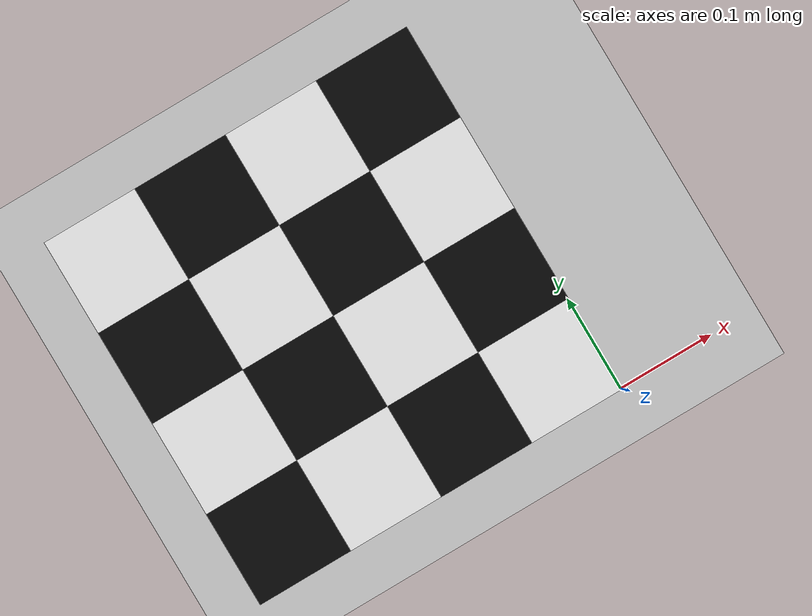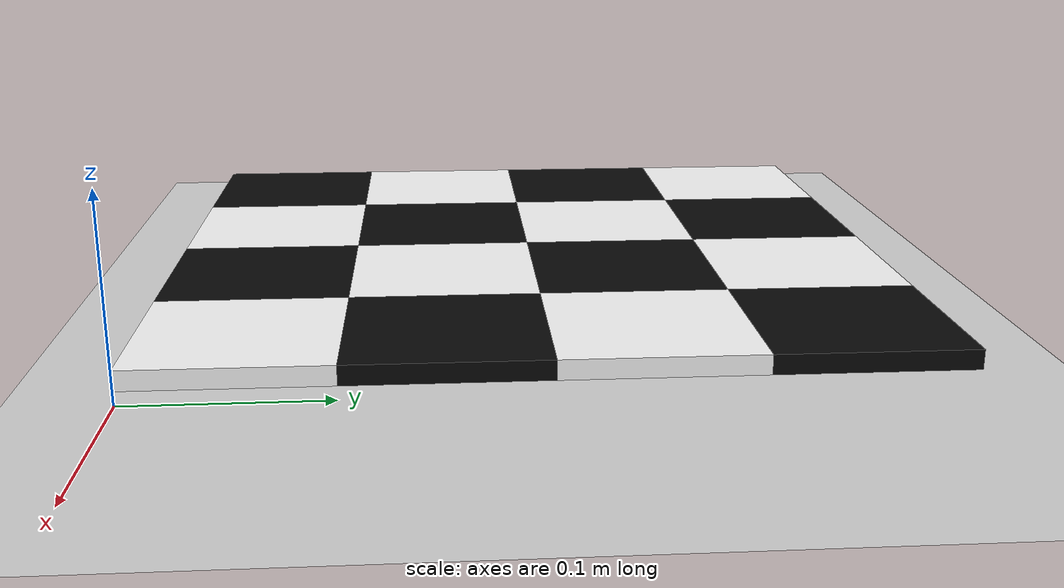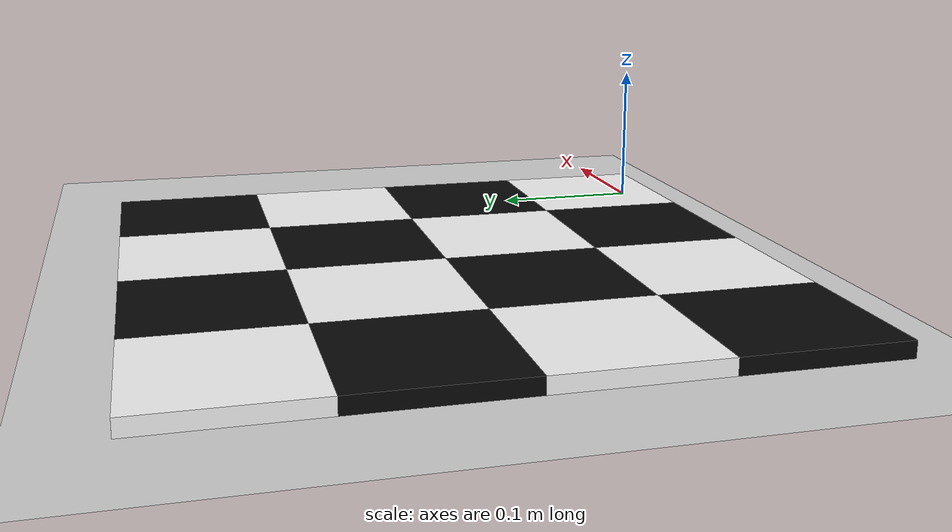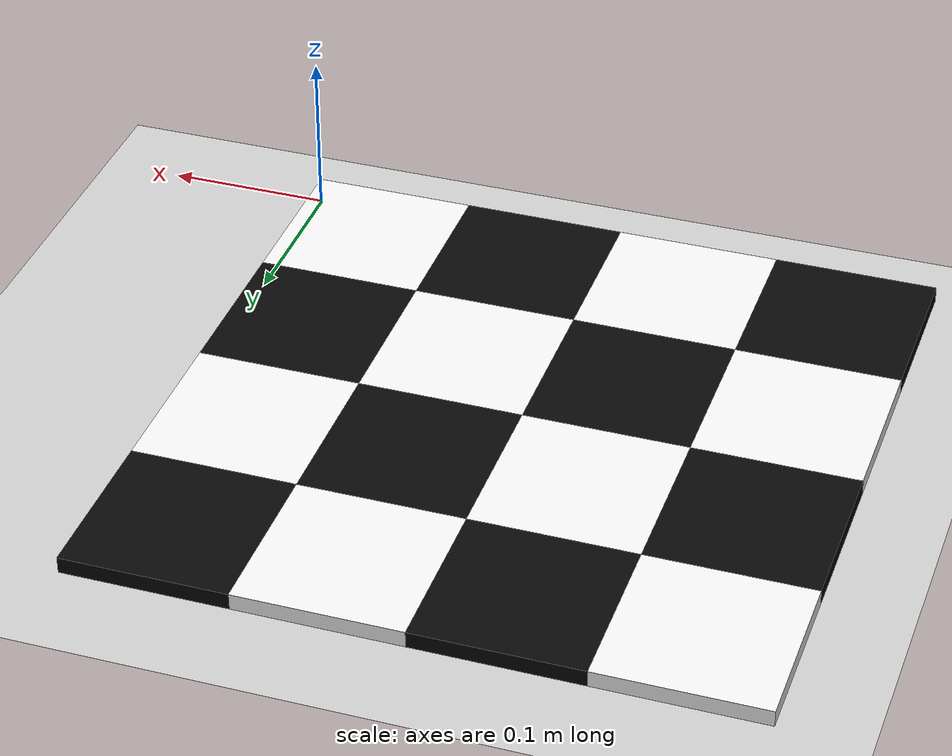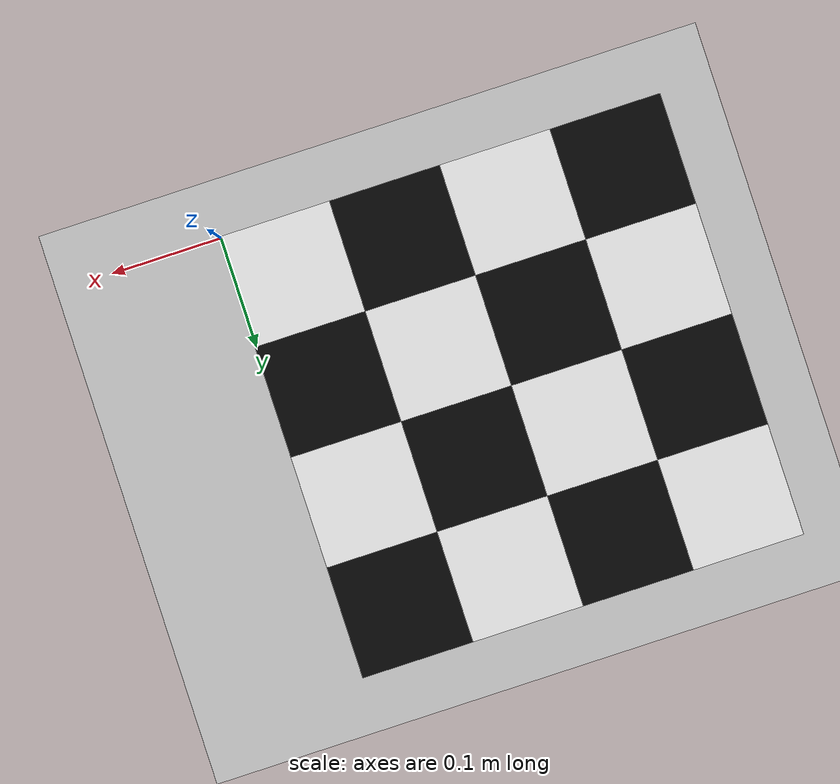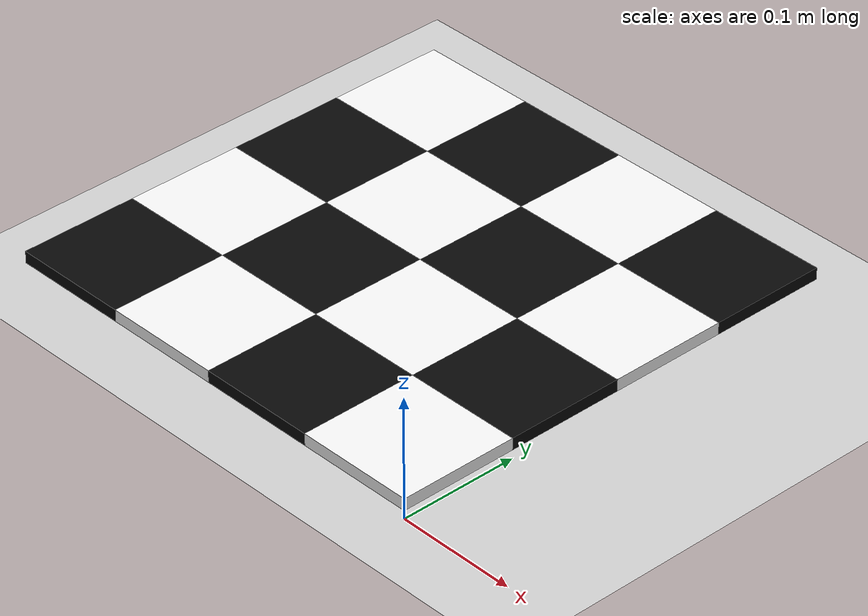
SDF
<sdf version="1.9">
 <world name="v7_railway_tunnel">
  <model name="ground_plane">
   <static>true</static>
   <link name="link">
    <collision name="collision">
     <geometry><plane><normal>0 0 1</normal><size>1 1</size></plane></geometry>
    </collision>
    <visual name="visual">
     <geometry><plane><normal>0 0 1</normal><size>500 500</size></plane></geometry>
     <material>
      <ambient>0.8 0.8 0.8 1</ambient>
      <diffuse>0.8 0.8 0.8 1</diffuse>
      <specular>0.1 0.1 0.1 1</specular>
     </material>
    </visual>
   </link>
  </model>
  <model name="optical_flow_floor">
   <static>true</static>
   <link name="fine_tile_0_4">
    <pose>-0.35 0.05 0.012 0 0 0</pose>
    <visual name="visual">
     <geometry><box><size>0.1 0.1 0.01</size></box></geometry>
     <material>
      <ambient>0.03 0.03 0.03 1</ambient>
      <diffuse>0.03 0.03 0.03 1</diffuse>
      <specular>0.1 0.1 0.1 1</specular>
     </material>
    </visual>
   </link>
   <link name="fine_tile_0_5">
    <pose>-0.35 0.15 0.012 0 0 0</pose>
    <visual name="visual">
     <geometry><box><size>0.1 0.1 0.01</size></box></geometry>
     <material>
      <ambient>0.95 0.95 0.95 1</ambient>
      <diffuse>0.95 0.95 0.95 1</diffuse>
      <specular>0.1 0.1 0.1 1</specular>
     </material>
    </visual>
   </link>
   <link name="fine_tile_0_6">
    <pose>-0.35 0.25 0.012 0 0 0</pose>
    <visual name="visual">
     <geometry><box><size>0.1 0.1 0.01</size></box></geometry>
     <material>
      <ambient>0.03 0.03 0.03 1</ambient>
      <diffuse>0.03 0.03 0.03 1</diffuse>
      <specular>0.1 0.1 0.1 1</specular>
     </material>
    </visual>
   </link>
   <link name="fine_tile_0_7">
    <pose>-0.35 0.35 0.012 0 0 0</pose>
    <visual name="visual">
     <geometry><box><size>0.1 0.1 0.01</size></box></geometry>
     <material>
      <ambient>0.95 0.95 0.95 1</ambient>
      <diffuse>0.95 0.95 0.95 1</diffuse>
      <specular>0.1 0.1 0.1 1</specular>
     </material>
    </visual>
   </link>
   <link name="fine_tile_1_4">
    <pose>-0.25 0.05 0.012 0 0 0</pose>
    <visual name="visual">
     <geometry><box><size>0.1 0.1 0.01</size></box></geometry>
     <material>
      <ambient>0.95 0.95 0.95 1</ambient>
      <diffuse>0.95 0.95 0.95 1</diffuse>
      <specular>0.1 0.1 0.1 1</specular>
     </material>
    </visual>
   </link>
   <link name="fine_tile_1_5">
    <pose>-0.25 0.15 0.012 0 0 0</pose>
    <visual name="visual">
     <geometry><box><size>0.1 0.1 0.01</size></box></geometry>
     <material>
      <ambient>0.03 0.03 0.03 1</ambient>
      <diffuse>0.03 0.03 0.03 1</diffuse>
      <specular>0.1 0.1 0.1 1</specular>
     </material>
    </visual>
   </link>
   <link name="fine_tile_1_6">
    <pose>-0.25 0.25 0.012 0 0 0</pose>
    <visual name="visual">
     <geometry><box><size>0.1 0.1 0.01</size></box></geometry>
     <material>
      <ambient>0.95 0.95 0.95 1</ambient>
      <diffuse>0.95 0.95 0.95 1</diffuse>
      <specular>0.1 0.1 0.1 1</specular>
     </material>
    </visual>
   </link>
   <link name="fine_tile_1_7">
    <pose>-0.25 0.35 0.012 0 0 0</pose>
    <visual name="visual">
     <geometry><box><size>0.1 0.1 0.01</size></box></geometry>
     <material>
      <ambient>0.03 0.03 0.03 1</ambient>
      <diffuse>0.03 0.03 0.03 1</diffuse>
      <specular>0.1 0.1 0.1 1</specular>
     </material>
    </visual>
   </link>
   <link name="fine_tile_2_4">
    <pose>-0.15 0.05 0.012 0 0 0</pose>
    <visual name="visual">
     <geometry><box><size>0.1 0.1 0.01</size></box></geometry>
     <material>
      <ambient>0.03 0.03 0.03 1</ambient>
      <diffuse>0.03 0.03 0.03 1</diffuse>
      <specular>0.1 0.1 0.1 1</specular>
     </material>
    </visual>
   </link>
   <link name="fine_tile_2_5">
    <pose>-0.15 0.15 0.012 0 0 0</pose>
    <visual name="visual">
     <geometry><box><size>0.1 0.1 0.01</size></box></geometry>
     <material>
      <ambient>0.95 0.95 0.95 1</ambient>
      <diffuse>0.95 0.95 0.95 1</diffuse>
      <specular>0.1 0.1 0.1 1</specular>
     </material>
    </visual>
   </link>
   <link name="fine_tile_2_6">
    <pose>-0.15 0.25 0.012 0 0 0</pose>
    <visual name="visual">
     <geometry><box><size>0.1 0.1 0.01</size></box></geometry>
     <material>
      <ambient>0.03 0.03 0.03 1</ambient>
      <diffuse>0.03 0.03 0.03 1</diffuse>
      <specular>0.1 0.1 0.1 1</specular>
     </material>
    </visual>
   </link>
   <link name="fine_tile_2_7">
    <pose>-0.15 0.35 0.012 0 0 0</pose>
    <visual name="visual">
     <geometry><box><size>0.1 0.1 0.01</size></box></geometry>
     <material>
      <ambient>0.95 0.95 0.95 1</ambient>
      <diffuse>0.95 0.95 0.95 1</diffuse>
      <specular>0.1 0.1 0.1 1</specular>
     </material>
    </visual>
   </link>
   <link name="fine_tile_3_4">
    <pose>-0.05 0.05 0.012 0 0 0</pose>
    <visual name="visual">
     <geometry><box><size>0.1 0.1 0.01</size></box></geometry>
     <material>
      <ambient>0.95 0.95 0.95 1</ambient>
      <diffuse>0.95 0.95 0.95 1</diffuse>
      <specular>0.1 0.1 0.1 1</specular>
     </material>
    </visual>
   </link>
   <link name="fine_tile_3_5">
    <pose>-0.05 0.15 0.012 0 0 0</pose>
    <visual name="visual">
     <geometry><box><size>0.1 0.1 0.01</size></box></geometry>
     <material>
      <ambient>0.03 0.03 0.03 1</ambient>
      <diffuse>0.03 0.03 0.03 1</diffuse>
      <specular>0.1 0.1 0.1 1</specular>
     </material>
    </visual>
   </link>
   <link name="fine_tile_3_6">
    <pose>-0.05 0.25 0.012 0 0 0</pose>
    <visual name="visual">
     <geometry><box><size>0.1 0.1 0.01</size></box></geometry>
     <material>
      <ambient>0.95 0.95 0.95 1</ambient>
      <diffuse>0.95 0.95 0.95 1</diffuse>
      <specular>0.1 0.1 0.1 1</specular>
     </material>
    </visual>
   </link>
   <link name="fine_tile_3_7">
    <pose>-0.05 0.35 0.012 0 0 0</pose>
    <visual name="visual">
     <geometry><box><size>0.1 0.1 0.01</size></box></geometry>
     <material>
      <ambient>0.03 0.03 0.03 1</ambient>
      <diffuse>0.03 0.03 0.03 1</diffuse>
      <specular>0.1 0.1 0.1 1</specular>
     </material>
    </visual>
   </link>
  </model>
 </world>
</sdf>
